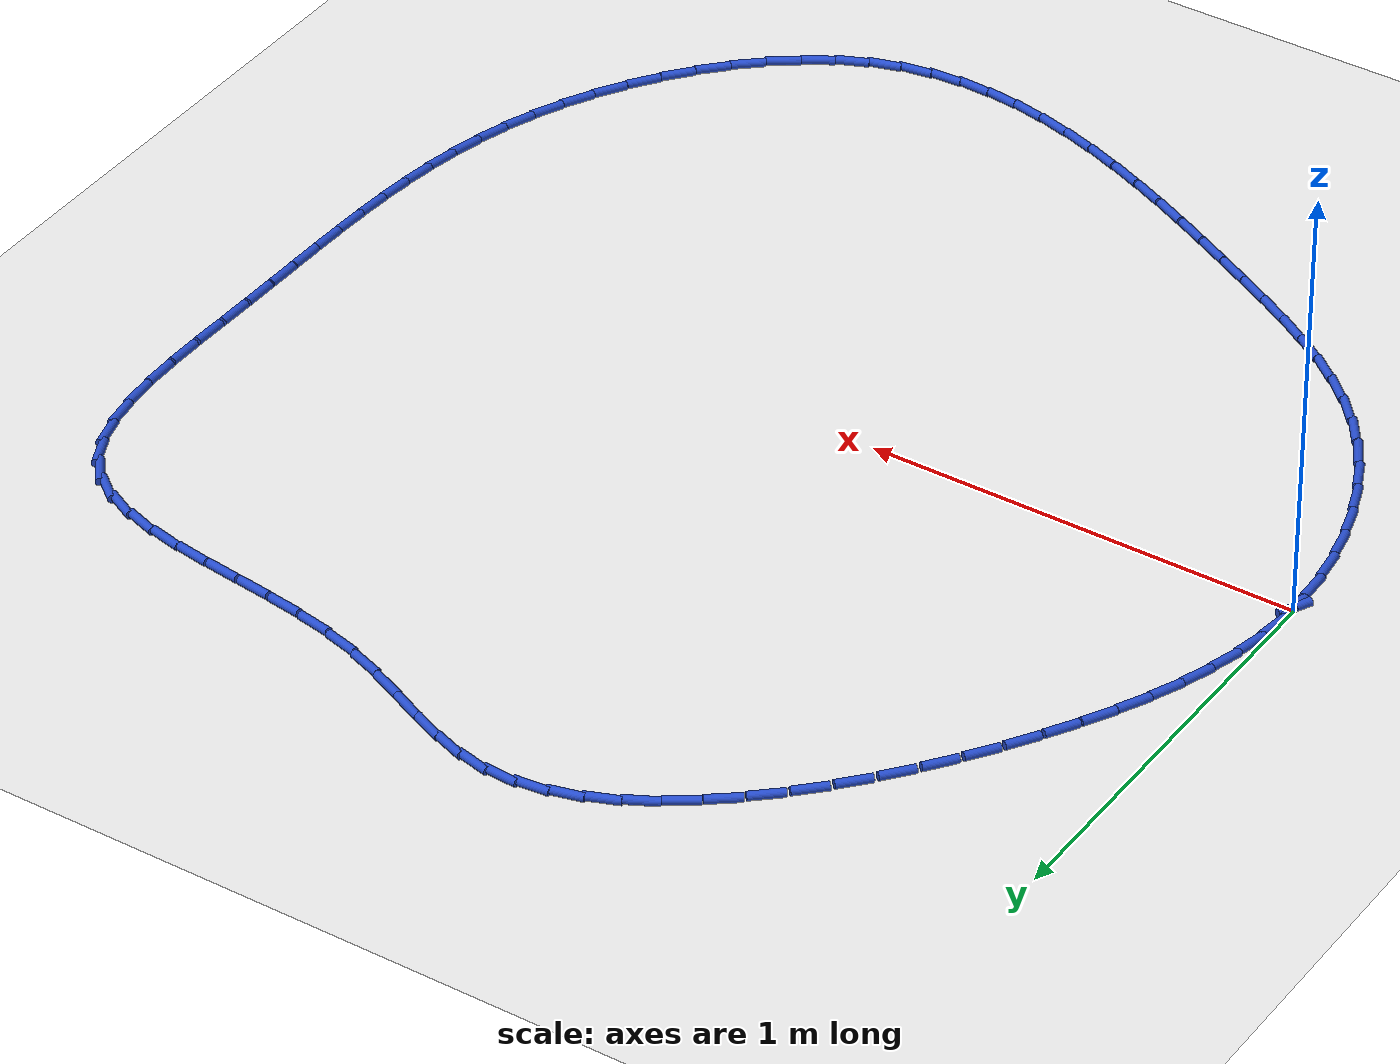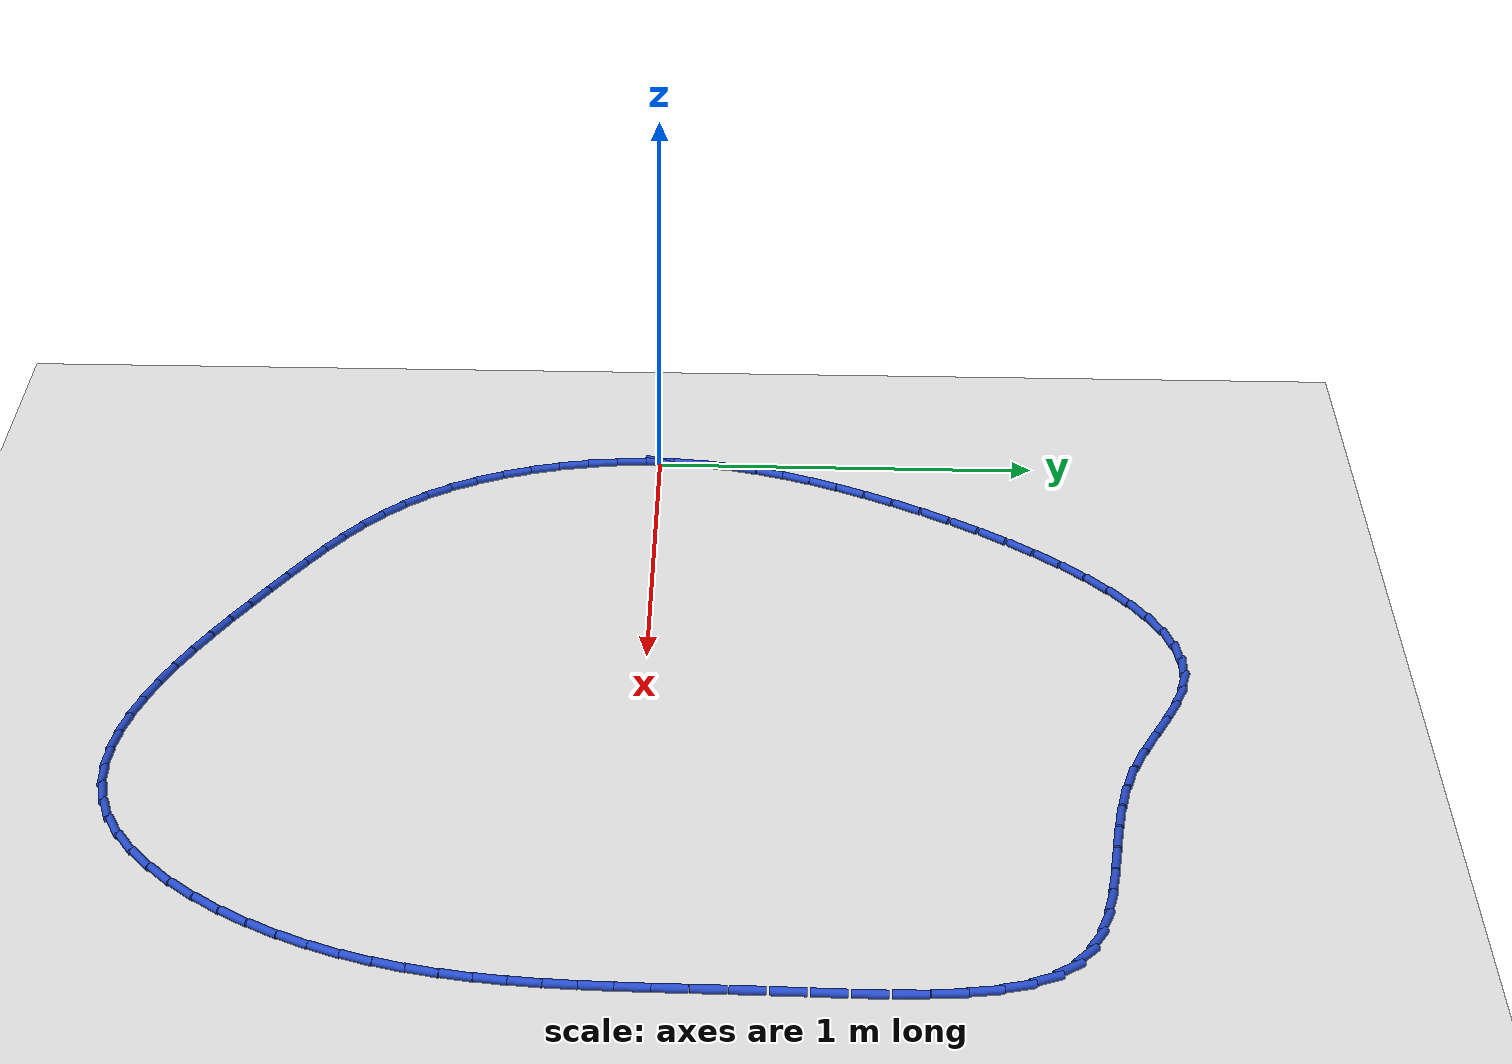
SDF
<sdf version="1.6">
 <world name="default">
  <light name="sun" type="directional">
   <pose>0 0 10 0 -0 0</pose>
   <diffuse>0.8 0.8 0.8 1</diffuse>
   <specular>0.2 0.2 0.2 1</specular>
   <attenuation>
    <range>1000</range>
    <constant>0.9</constant>
    <linear>0.01</linear>
    <quadratic>0.001</quadratic>
   </attenuation>
   <direction>-0.5 0.1 -0.9</direction>
  </light>
  <model name="ground_plane">
   <static>1</static>
   <link name="link">
    <collision name="collision">
     <geometry><plane><normal>0 0 1</normal><size>100 100</size></plane></geometry>
     <surface><friction><ode><mu>100</mu><mu2>50</mu2></ode></friction></surface>
    </collision>
    <visual name="visual">
     <cast_shadows>0</cast_shadows>
     <geometry><plane><normal>0 0 1</normal><size>100 100</size></plane></geometry>
     <material>
      <script><uri>file://media/materials/scripts/gazebo.material</uri><name>Gazebo/WhiteGlow</name></script>
     </material>
    </visual>
   </link>
  </model>
  <gravity>0 0 -9.8</gravity>
  <magnetic_field>6e-06 2.3e-05 -4.2e-05</magnetic_field>
  <atmosphere type="adiabatic"/>
  <physics name="default_physics" default="0" type="ode">
   <max_step_size>0.001</max_step_size>
   <real_time_factor>1</real_time_factor>
   <real_time_update_rate>1000</real_time_update_rate>
  </physics>
  <scene><ambient>0.4 0.4 0.4 1</ambient><background>0.7 0.7 0.7 1</background><shadows>1</shadows></scene>
  <spherical_coordinates>
   <surface_model>EARTH_WGS84</surface_model>
   <latitude_deg>0</latitude_deg>
   <longitude_deg>0</longitude_deg>
   <elevation>0</elevation>
   <heading_deg>0</heading_deg>
  </spherical_coordinates>
  <model name="line">
   <link name="link_0">
    <pose>-2.7755575615628914e-17 2.7755575615628914e-17 0.01 0 1.57 1.5141377785667471</pose>
    <collision name="collision">
     <geometry><cylinder><radius>0.01</radius><length>0.08</length></cylinder></geometry>
    </collision>
    <visual name="visual">
     <material>
      <script><name>Gazebo/Blue</name><uri>file://media/materials/scripts/gazebo.material</uri></script>
     </material>
     <geometry><cylinder><radius>0.01</radius><length>0.08</length></cylinder></geometry>
    </visual>
   </link>
   <link name="link_1">
    <pose>0.004302029935288694 0.0758477871059244 0.01 0 1.57 1.4289447991006399</pose>
    <collision name="collision">
     <geometry><cylinder><radius>0.01</radius><length>0.08</length></cylinder></geometry>
    </collision>
    <visual name="visual">
     <material>
      <script><name>Gazebo/Blue</name><uri>file://media/materials/scripts/gazebo.material</uri></script>
     </material>
     <geometry><cylinder><radius>0.01</radius><length>0.08</length></cylinder></geometry>
    </visual>
   </link>
   <link name="link_2">
    <pose>0.014940544803427864 0.1503416158384287 0.01 0 1.57 1.3486167609560773</pose>
    <collision name="collision">
     <geometry><cylinder><radius>0.01</radius><length>0.08</length></cylinder></geometry>
    </collision>
    <visual name="visual">
     <material>
      <script><name>Gazebo/Blue</name><uri>file://media/materials/scripts/gazebo.material</uri></script>
     </material>
     <geometry><cylinder><radius>0.01</radius><length>0.08</length></cylinder></geometry>
    </visual>
   </link>
   <link name="link_3">
    <pose>0.031537674449649736 0.22380979319827554 0.01 0 1.57 1.2749753436544171</pose>
    <collision name="collision">
     <geometry><cylinder><radius>0.01</radius><length>0.08</length></cylinder></geometry>
    </collision>
    <visual name="visual">
     <material>
      <script><name>Gazebo/Blue</name><uri>file://media/materials/scripts/gazebo.material</uri></script>
     </material>
     <geometry><cylinder><radius>0.01</radius><length>0.08</length></cylinder></geometry>
    </visual>
   </link>
   <link name="link_4">
    <pose>0.053715548719186546 0.2965806261862277 0.01 0 1.57 1.209242591728296</pose>
    <collision name="collision">
     <geometry><cylinder><radius>0.01</radius><length>0.08</length></cylinder></geometry>
    </collision>
    <visual name="visual">
     <material>
      <script><name>Gazebo/Blue</name><uri>file://media/materials/scripts/gazebo.material</uri></script>
     </material>
     <geometry><cylinder><radius>0.01</radius><length>0.08</length></cylinder></geometry>
    </visual>
   </link>
   <link name="link_5">
    <pose>0.0810962974572705 0.368982421803048 0.01 0 1.57 1.152049588860094</pose>
    <collision name="collision">
     <geometry><cylinder><radius>0.01</radius><length>0.08</length></cylinder></geometry>
    </collision>
    <visual name="visual">
     <material>
      <script><name>Gazebo/Blue</name><uri>file://media/materials/scripts/gazebo.material</uri></script>
     </material>
     <geometry><cylinder><radius>0.01</radius><length>0.08</length></cylinder></geometry>
    </visual>
   </link>
   <link name="link_6">
    <pose>0.11330205050913383 0.4413434870494991 0.01 0 1.57 1.1035371263111255</pose>
    <collision name="collision">
     <geometry><cylinder><radius>0.01</radius><length>0.08</length></cylinder></geometry>
    </collision>
    <visual name="visual">
     <material>
      <script><name>Gazebo/Blue</name><uri>file://media/materials/scripts/gazebo.material</uri></script>
     </material>
     <geometry><cylinder><radius>0.01</radius><length>0.08</length></cylinder></geometry>
    </visual>
   </link>
   <link name="link_7">
    <pose>0.14995493772000884 0.5139921289263438 0.01 0 1.57 1.0634930308182473</pose>
    <collision name="collision">
     <geometry><cylinder><radius>0.01</radius><length>0.08</length></cylinder></geometry>
    </collision>
    <visual name="visual">
     <material>
      <script><name>Gazebo/Blue</name><uri>file://media/materials/scripts/gazebo.material</uri></script>
     </material>
     <geometry><cylinder><radius>0.01</radius><length>0.08</length></cylinder></geometry>
    </visual>
   </link>
   <link name="link_8">
    <pose>0.1906770889351276 0.5872566544343447 0.01 0 1.57 1.030126871271785</pose>
    <collision name="collision">
     <geometry><cylinder><radius>0.01</radius><length>0.08</length></cylinder></geometry>
    </collision>
    <visual name="visual">
     <material>
      <script><name>Gazebo/Blue</name><uri>file://media/materials/scripts/gazebo.material</uri></script>
     </material>
     <geometry><cylinder><radius>0.01</radius><length>0.08</length></cylinder></geometry>
    </visual>
   </link>
   <link name="link_9">
    <pose>0.23510948796647455 0.6612687138691857 0.01 0 1.57 0.9972366766418178</pose>
    <collision name="collision">
     <geometry><cylinder><radius>0.01</radius><length>0.08</length></cylinder></geometry>
    </collision>
    <visual name="visual">
     <material>
      <script><name>Gazebo/Blue</name><uri>file://media/materials/scripts/gazebo.material</uri></script>
     </material>
     <geometry><cylinder><radius>0.01</radius><length>0.08</length></cylinder></geometry>
    </visual>
   </link>
   <link name="link_10">
    <pose>0.2829701751711078 0.7353562175784369 0.01 0 1.57 0.9625765692994553</pose>
    <collision name="collision">
     <geometry><cylinder><radius>0.01</radius><length>0.08</length></cylinder></geometry>
    </collision>
    <visual name="visual">
     <material>
      <script><name>Gazebo/Blue</name><uri>file://media/materials/scripts/gazebo.material</uri></script>
     </material>
     <geometry><cylinder><radius>0.01</radius><length>0.08</length></cylinder></geometry>
    </visual>
   </link>
   <link name="link_11">
    <pose>0.33399687409582896 0.8086417699763703 0.01 0 1.57 0.9252802987614811</pose>
    <collision name="collision">
     <geometry><cylinder><radius>0.01</radius><length>0.08</length></cylinder></geometry>
    </collision>
    <visual name="visual">
     <material>
      <script><name>Gazebo/Blue</name><uri>file://media/materials/scripts/gazebo.material</uri></script>
     </material>
     <geometry><cylinder><radius>0.01</radius><length>0.08</length></cylinder></geometry>
    </visual>
   </link>
   <link name="link_12">
    <pose>0.38792730829455213 0.8802479754030718 0.01 0 1.57 0.8844002564801519</pose>
    <collision name="collision">
     <geometry><cylinder><radius>0.01</radius><length>0.08</length></cylinder></geometry>
    </collision>
    <visual name="visual">
     <material>
      <script><name>Gazebo/Blue</name><uri>file://media/materials/scripts/gazebo.material</uri></script>
     </material>
     <geometry><cylinder><radius>0.01</radius><length>0.08</length></cylinder></geometry>
    </visual>
   </link>
   <link name="link_13">
    <pose>0.44449920132119164 0.9492974381986276 0.01 0 1.57 0.8388467807622036</pose>
    <collision name="collision">
     <geometry><cylinder><radius>0.01</radius><length>0.08</length></cylinder></geometry>
    </collision>
    <visual name="visual">
     <material>
      <script><name>Gazebo/Blue</name><uri>file://media/materials/scripts/gazebo.material</uri></script>
     </material>
     <geometry><cylinder><radius>0.01</radius><length>0.08</length></cylinder></geometry>
    </visual>
   </link>
   <link name="link_14">
    <pose>0.5034502767296614 1.0149127627031234 0.01 0 1.57 0.7873251512458319</pose>
    <collision name="collision">
     <geometry><cylinder><radius>0.01</radius><length>0.08</length></cylinder></geometry>
    </collision>
    <visual name="visual">
     <material>
      <script><name>Gazebo/Blue</name><uri>file://media/materials/scripts/gazebo.material</uri></script>
     </material>
     <geometry><cylinder><radius>0.01</radius><length>0.08</length></cylinder></geometry>
    </visual>
   </link>
   <link name="link_15">
    <pose>0.5645182580738752 1.0762165532566448 0.01 0 1.57 0.7282704178170308</pose>
    <collision name="collision">
     <geometry><cylinder><radius>0.01</radius><length>0.08</length></cylinder></geometry>
    </collision>
    <visual name="visual">
     <material>
      <script><name>Gazebo/Blue</name><uri>file://media/materials/scripts/gazebo.material</uri></script>
     </material>
     <geometry><cylinder><radius>0.01</radius><length>0.08</length></cylinder></geometry>
    </visual>
   </link>
   <link name="link_16">
    <pose>0.6274408689077476 1.1323314141992782 0.01 0 1.57 0.6597886494438495</pose>
    <collision name="collision">
     <geometry><cylinder><radius>0.01</radius><length>0.08</length></cylinder></geometry>
    </collision>
    <visual name="visual">
     <material>
      <script><name>Gazebo/Blue</name><uri>file://media/materials/scripts/gazebo.material</uri></script>
     </material>
     <geometry><cylinder><radius>0.01</radius><length>0.08</length></cylinder></geometry>
    </visual>
   </link>
   <link name="link_17">
    <pose>0.6919558327851928 1.1823799498711098 0.01 0 1.57 0.5796303562644355</pose>
    <collision name="collision">
     <geometry><cylinder><radius>0.01</radius><length>0.08</length></cylinder></geometry>
    </collision>
    <visual name="visual">
     <material>
      <script><name>Gazebo/Blue</name><uri>file://media/materials/scripts/gazebo.material</uri></script>
     </material>
     <geometry><cylinder><radius>0.01</radius><length>0.08</length></cylinder></geometry>
    </visual>
   </link>
   <link name="link_18">
    <pose>0.757800873260124 1.2254847646122242 0.01 0 1.57 0.48525484883733727</pose>
    <collision name="collision">
     <geometry><cylinder><radius>0.01</radius><length>0.08</length></cylinder></geometry>
    </collision>
    <visual name="visual">
     <material>
      <script><name>Gazebo/Blue</name><uri>file://media/materials/scripts/gazebo.material</uri></script>
     </material>
     <geometry><cylinder><radius>0.01</radius><length>0.08</length></cylinder></geometry>
    </visual>
   </link>
   <link name="link_19">
    <pose>0.8247137138864564 1.2607684627627087 0.01 0 1.57 0.3740974769447682</pose>
    <collision name="collision">
     <geometry><cylinder><radius>0.01</radius><length>0.08</length></cylinder></geometry>
    </collision>
    <visual name="visual">
     <material>
      <script><name>Gazebo/Blue</name><uri>file://media/materials/scripts/gazebo.material</uri></script>
     </material>
     <geometry><cylinder><radius>0.01</radius><length>0.08</length></cylinder></geometry>
    </visual>
   </link>
   <link name="link_20">
    <pose>0.8924320782181034 1.2873536486626485 0.01 0 1.57 0.24420467534012197</pose>
    <collision name="collision">
     <geometry><cylinder><radius>0.01</radius><length>0.08</length></cylinder></geometry>
    </collision>
    <visual name="visual">
     <material>
      <script><name>Gazebo/Blue</name><uri>file://media/materials/scripts/gazebo.material</uri></script>
     </material>
     <geometry><cylinder><radius>0.01</radius><length>0.08</length></cylinder></geometry>
    </visual>
   </link>
   <link name="link_21">
    <pose>0.9606936898089791 1.304362926652129 0.01 0 1.57 0.09535810596372785</pose>
    <collision name="collision">
     <geometry><cylinder><radius>0.01</radius><length>0.08</length></cylinder></geometry>
    </collision>
    <visual name="visual">
     <material>
      <script><name>Gazebo/Blue</name><uri>file://media/materials/scripts/gazebo.material</uri></script>
     </material>
     <geometry><cylinder><radius>0.01</radius><length>0.08</length></cylinder></geometry>
    </visual>
   </link>
   <link name="link_22">
    <pose>1.029236272212998 1.3109189010712372 0.01 0 1.57 -0.06952943739422877</pose>
    <collision name="collision">
     <geometry><cylinder><radius>0.01</radius><length>0.08</length></cylinder></geometry>
    </collision>
    <visual name="visual">
     <material>
      <script><name>Gazebo/Blue</name><uri>file://media/materials/scripts/gazebo.material</uri></script>
     </material>
     <geometry><cylinder><radius>0.01</radius><length>0.08</length></cylinder></geometry>
    </visual>
   </link>
   <link name="link_23">
    <pose>1.0977975492510208 1.306144177353987 0.01 0 1.57 -0.2330867104921413</pose>
    <collision name="collision">
     <geometry><cylinder><radius>0.01</radius><length>0.08</length></cylinder></geometry>
    </collision>
    <visual name="visual">
     <material>
      <script><name>Gazebo/Blue</name><uri>file://media/materials/scripts/gazebo.material</uri></script>
     </material>
     <geometry><cylinder><radius>0.01</radius><length>0.08</length></cylinder></geometry>
    </visual>
   </link>
   <link name="link_24">
    <pose>1.166291490249181 1.289883601982131 0.01 0 1.57 -0.34893554499861323</pose>
    <collision name="collision">
     <geometry><cylinder><radius>0.01</radius><length>0.08</length></cylinder></geometry>
    </collision>
    <visual name="visual">
     <material>
      <script><name>Gazebo/Blue</name><uri>file://media/materials/scripts/gazebo.material</uri></script>
     </material>
     <geometry><cylinder><radius>0.01</radius><length>0.08</length></cylinder></geometry>
    </visual>
   </link>
   <link name="link_25">
    <pose>1.2353129029827603 1.2647720470558996 0.01 0 1.57 -0.4111475063744677</pose>
    <collision name="collision">
     <geometry><cylinder><radius>0.01</radius><length>0.08</length></cylinder></geometry>
    </collision>
    <visual name="visual">
     <material>
      <script><name>Gazebo/Blue</name><uri>file://media/materials/scripts/gazebo.material</uri></script>
     </material>
     <geometry><cylinder><radius>0.01</radius><length>0.08</length></cylinder></geometry>
    </visual>
   </link>
   <link name="link_26">
    <pose>1.3056209742776643 1.234117997869606 0.01 0 1.57 -0.42662651040753297</pose>
    <collision name="collision">
     <geometry><cylinder><radius>0.01</radius><length>0.08</length></cylinder></geometry>
    </collision>
    <visual name="visual">
     <material>
      <script><name>Gazebo/Blue</name><uri>file://media/materials/scripts/gazebo.material</uri></script>
     </material>
     <geometry><cylinder><radius>0.01</radius><length>0.08</length></cylinder></geometry>
    </visual>
   </link>
   <link name="link_27">
    <pose>1.3779748909597989 1.2012299397175614 0.01 0 1.57 -0.4004162972871803</pose>
    <collision name="collision">
     <geometry><cylinder><radius>0.01</radius><length>0.08</length></cylinder></geometry>
    </collision>
    <visual name="visual">
     <material>
      <script><name>Gazebo/Blue</name><uri>file://media/materials/scripts/gazebo.material</uri></script>
     </material>
     <geometry><cylinder><radius>0.01</radius><length>0.08</length></cylinder></geometry>
    </visual>
   </link>
   <link name="link_28">
    <pose>1.4531338398550693 1.1694163578940786 0.01 0 1.57 -0.335309506716102</pose>
    <collision name="collision">
     <geometry><cylinder><radius>0.01</radius><length>0.08</length></cylinder></geometry>
    </collision>
    <visual name="visual">
     <material>
      <script><name>Gazebo/Blue</name><uri>file://media/materials/scripts/gazebo.material</uri></script>
     </material>
     <geometry><cylinder><radius>0.01</radius><length>0.08</length></cylinder></geometry>
    </visual>
   </link>
   <link name="link_29">
    <pose>1.5318562730646612 1.1419840958464096 0.01 0 1.57 -0.2487221349410982</pose>
    <collision name="collision">
     <geometry><cylinder><radius>0.01</radius><length>0.08</length></cylinder></geometry>
    </collision>
    <visual name="visual">
     <material>
      <script><name>Gazebo/Blue</name><uri>file://media/materials/scripts/gazebo.material</uri></script>
     </material>
     <geometry><cylinder><radius>0.01</radius><length>0.08</length></cylinder></geometry>
    </visual>
   </link>
   <link name="link_30">
    <pose>1.6143591351634892 1.1210299213081012 0.01 0 1.57 -0.18298538899159023</pose>
    <collision name="collision">
     <geometry><cylinder><radius>0.01</radius><length>0.08</length></cylinder></geometry>
    </collision>
    <visual name="visual">
     <material>
      <script><name>Gazebo/Blue</name><uri>file://media/materials/scripts/gazebo.material</uri></script>
     </material>
     <geometry><cylinder><radius>0.01</radius><length>0.08</length></cylinder></geometry>
    </visual>
   </link>
   <link name="link_31">
    <pose>1.69936000114621 1.1053000470768788 0.01 0 1.57 -0.14251952359969014</pose>
    <collision name="collision">
     <geometry><cylinder><radius>0.01</radius><length>0.08</length></cylinder></geometry>
    </collision>
    <visual name="visual">
     <material>
      <script><name>Gazebo/Blue</name><uri>file://media/materials/scripts/gazebo.material</uri></script>
     </material>
     <geometry><cylinder><radius>0.01</radius><length>0.08</length></cylinder></geometry>
    </visual>
   </link>
   <link name="link_32">
    <pose>1.7853190842164959 1.0929655743632847 0.01 0 1.57 -0.12545943297087994</pose>
    <collision name="collision">
     <geometry><cylinder><radius>0.01</radius><length>0.08</length></cylinder></geometry>
    </collision>
    <visual name="visual">
     <material>
      <script><name>Gazebo/Blue</name><uri>file://media/materials/scripts/gazebo.material</uri></script>
     </material>
     <geometry><cylinder><radius>0.01</radius><length>0.08</length></cylinder></geometry>
    </visual>
   </link>
   <link name="link_33">
    <pose>1.8706965975780208 1.0821976043778627 0.01 0 1.57 -0.13171997969350088</pose>
    <collision name="collision">
     <geometry><cylinder><radius>0.01</radius><length>0.08</length></cylinder></geometry>
    </collision>
    <visual name="visual">
     <material>
      <script><name>Gazebo/Blue</name><uri>file://media/materials/scripts/gazebo.material</uri></script>
     </material>
     <geometry><cylinder><radius>0.01</radius><length>0.08</length></cylinder></geometry>
    </visual>
   </link>
   <link name="link_34">
    <pose>1.9539527544344568 1.0711672383311548 0.01 0 1.57 -0.1633857635529927</pose>
    <collision name="collision">
     <geometry><cylinder><radius>0.01</radius><length>0.08</length></cylinder></geometry>
    </collision>
    <visual name="visual">
     <material>
      <script><name>Gazebo/Blue</name><uri>file://media/materials/scripts/gazebo.material</uri></script>
     </material>
     <geometry><cylinder><radius>0.01</radius><length>0.08</length></cylinder></geometry>
    </visual>
   </link>
   <link name="link_35">
    <pose>2.0335477679894773 1.0580455774337036 0.01 0 1.57 -0.22519006617982093</pose>
    <collision name="collision">
     <geometry><cylinder><radius>0.01</radius><length>0.08</length></cylinder></geometry>
    </collision>
    <visual name="visual">
     <material>
      <script><name>Gazebo/Blue</name><uri>file://media/materials/scripts/gazebo.material</uri></script>
     </material>
     <geometry><cylinder><radius>0.01</radius><length>0.08</length></cylinder></geometry>
    </visual>
   </link>
   <link name="link_36">
    <pose>2.107941851446754 1.041003722896052 0.01 0 1.57 -0.3249375690902876</pose>
    <collision name="collision">
     <geometry><cylinder><radius>0.01</radius><length>0.08</length></cylinder></geometry>
    </collision>
    <visual name="visual">
     <material>
      <script><name>Gazebo/Blue</name><uri>file://media/materials/scripts/gazebo.material</uri></script>
     </material>
     <geometry><cylinder><radius>0.01</radius><length>0.08</length></cylinder></geometry>
    </visual>
   </link>
   <link name="link_37">
    <pose>2.175595218009962 1.0182127759287432 0.01 0 1.57 -0.4728014731314932</pose>
    <collision name="collision">
     <geometry><cylinder><radius>0.01</radius><length>0.08</length></cylinder></geometry>
    </collision>
    <visual name="visual">
     <material>
      <script><name>Gazebo/Blue</name><uri>file://media/materials/scripts/gazebo.material</uri></script>
     </material>
     <geometry><cylinder><radius>0.01</radius><length>0.08</length></cylinder></geometry>
    </visual>
   </link>
   <link name="link_38">
    <pose>2.234968080882773 0.9878438377423195 0.01 0 1.57 -0.6763848508837003</pose>
    <collision name="collision">
     <geometry><cylinder><radius>0.01</radius><length>0.08</length></cylinder></geometry>
    </collision>
    <visual name="visual">
     <material>
      <script><name>Gazebo/Blue</name><uri>file://media/materials/scripts/gazebo.material</uri></script>
     </material>
     <geometry><cylinder><radius>0.01</radius><length>0.08</length></cylinder></geometry>
    </visual>
   </link>
   <link name="link_39">
    <pose>2.2845206532688596 0.9480680095473231 0.01 0 1.57 -0.9231912576586706</pose>
    <collision name="collision">
     <geometry><cylinder><radius>0.01</radius><length>0.08</length></cylinder></geometry>
    </collision>
    <visual name="visual">
     <material>
      <script><name>Gazebo/Blue</name><uri>file://media/materials/scripts/gazebo.material</uri></script>
     </material>
     <geometry><cylinder><radius>0.01</radius><length>0.08</length></cylinder></geometry>
    </visual>
   </link>
   <link name="link_40">
    <pose>2.3229250857089796 0.8972975257422837 0.01 0 1.57 -1.1438602207455248</pose>
    <collision name="collision">
     <geometry><cylinder><radius>0.01</radius><length>0.08</length></cylinder></geometry>
    </collision>
    <visual name="visual">
     <material>
      <script><name>Gazebo/Blue</name><uri>file://media/materials/scripts/gazebo.material</uri></script>
     </material>
     <geometry><cylinder><radius>0.01</radius><length>0.08</length></cylinder></geometry>
    </visual>
   </link>
   <link name="link_41">
    <pose>2.3507591382926134 0.8361127413214848 0.01 0 1.57 -1.3073037686518383</pose>
    <collision name="collision">
     <geometry><cylinder><radius>0.01</radius><length>0.08</length></cylinder></geometry>
    </collision>
    <visual name="visual">
     <material>
      <script><name>Gazebo/Blue</name><uri>file://media/materials/scripts/gazebo.material</uri></script>
     </material>
     <geometry><cylinder><radius>0.01</radius><length>0.08</length></cylinder></geometry>
    </visual>
   </link>
   <link name="link_42">
    <pose>2.3696082154336584 0.7662404656588199 0.01 0 1.57 -1.422730472767167</pose>
    <collision name="collision">
     <geometry><cylinder><radius>0.01</radius><length>0.08</length></cylinder></geometry>
    </collision>
    <visual name="visual">
     <material>
      <script><name>Gazebo/Blue</name><uri>file://media/materials/scripts/gazebo.material</uri></script>
     </material>
     <geometry><cylinder><radius>0.01</radius><length>0.08</length></cylinder></geometry>
    </visual>
   </link>
   <link name="link_43">
    <pose>2.381066871984023 0.6894179191030445 0.01 0 1.57 -1.5018771944328115</pose>
    <collision name="collision">
     <geometry><cylinder><radius>0.01</radius><length>0.08</length></cylinder></geometry>
    </collision>
    <visual name="visual">
     <material>
      <script><name>Gazebo/Blue</name><uri>file://media/materials/scripts/gazebo.material</uri></script>
     </material>
     <geometry><cylinder><radius>0.01</radius><length>0.08</length></cylinder></geometry>
    </visual>
   </link>
   <link name="link_44">
    <pose>2.386729662795614 0.6073823220029156 0.01 0 1.57 -1.5537069424338572</pose>
    <collision name="collision">
     <geometry><cylinder><radius>0.01</radius><length>0.08</length></cylinder></geometry>
    </collision>
    <visual name="visual">
     <material>
      <script><name>Gazebo/Blue</name><uri>file://media/materials/scripts/gazebo.material</uri></script>
     </material>
     <geometry><cylinder><radius>0.01</radius><length>0.08</length></cylinder></geometry>
    </visual>
   </link>
   <link name="link_45">
    <pose>2.388191142720339 0.5218708947071896 0.01 0 1.57 1.5576707124464784</pose>
    <collision name="collision">
     <geometry><cylinder><radius>0.01</radius><length>0.08</length></cylinder></geometry>
    </collision>
    <visual name="visual">
     <material>
      <script><name>Gazebo/Blue</name><uri>file://media/materials/scripts/gazebo.material</uri></script>
     </material>
     <geometry><cylinder><radius>0.01</radius><length>0.08</length></cylinder></geometry>
    </visual>
   </link>
   <link name="link_46">
    <pose>2.387045866610107 0.4346208575646231 0.01 0 1.57 1.5460742354610313</pose>
    <collision name="collision">
     <geometry><cylinder><radius>0.01</radius><length>0.08</length></cylinder></geometry>
    </collision>
    <visual name="visual">
     <material>
      <script><name>Gazebo/Blue</name><uri>file://media/materials/scripts/gazebo.material</uri></script>
     </material>
     <geometry><cylinder><radius>0.01</radius><length>0.08</length></cylinder></geometry>
    </visual>
   </link>
   <link name="link_47">
    <pose>2.3848883893168247 0.3473694309239723 0.01 0 1.57 1.550761453642109</pose>
    <collision name="collision">
     <geometry><cylinder><radius>0.01</radius><length>0.08</length></cylinder></geometry>
    </collision>
    <visual name="visual">
     <material>
      <script><name>Gazebo/Blue</name><uri>file://media/materials/scripts/gazebo.material</uri></script>
     </material>
     <geometry><cylinder><radius>0.01</radius><length>0.08</length></cylinder></geometry>
    </visual>
   </link>
   <link name="link_48">
    <pose>2.3831723103637006 0.2617262963387328 0.01 0 1.57 1.557667392899366</pose>
    <collision name="collision">
     <geometry><cylinder><radius>0.01</radius><length>0.08</length></cylinder></geometry>
    </collision>
    <visual name="visual">
     <material>
      <script><name>Gazebo/Blue</name><uri>file://media/materials/scripts/gazebo.material</uri></script>
     </material>
     <geometry><cylinder><radius>0.01</radius><length>0.08</length></cylinder></geometry>
    </visual>
   </link>
   <link name="link_49">
    <pose>2.38207493131565 0.17814631911318612 0.01 0 1.57 1.5587969522479344</pose>
    <collision name="collision">
     <geometry><cylinder><radius>0.01</radius><length>0.08</length></cylinder></geometry>
    </collision>
    <visual name="visual">
     <material>
      <script><name>Gazebo/Blue</name><uri>file://media/materials/scripts/gazebo.material</uri></script>
     </material>
     <geometry><cylinder><radius>0.01</radius><length>0.08</length></cylinder></geometry>
    </visual>
   </link>
   <link name="link_50">
    <pose>2.381094822371529 0.0964702367883575 0.01 0 1.57 1.5536525992228596</pose>
    <collision name="collision">
     <geometry><cylinder><radius>0.01</radius><length>0.08</length></cylinder></geometry>
    </collision>
    <visual name="visual">
     <material>
      <script><name>Gazebo/Blue</name><uri>file://media/materials/scripts/gazebo.material</uri></script>
     </material>
     <geometry><cylinder><radius>0.01</radius><length>0.08</length></cylinder></geometry>
    </visual>
   </link>
   <link name="link_51">
    <pose>2.3797242675853107 0.016533099093731872 0.01 0 1.57 1.5418530897978777</pose>
    <collision name="collision">
     <geometry><cylinder><radius>0.01</radius><length>0.08</length></cylinder></geometry>
    </collision>
    <visual name="visual">
     <material>
      <script><name>Gazebo/Blue</name><uri>file://media/materials/scripts/gazebo.material</uri></script>
     </material>
     <geometry><cylinder><radius>0.01</radius><length>0.08</length></cylinder></geometry>
    </visual>
   </link>
   <link name="link_52">
    <pose>2.377455551010968 -0.061830044241205584 0.01 0 1.57 1.52308210057465</pose>
    <collision name="collision">
     <geometry><cylinder><radius>0.01</radius><length>0.08</length></cylinder></geometry>
    </collision>
    <visual name="visual">
     <material>
      <script><name>Gazebo/Blue</name><uri>file://media/materials/scripts/gazebo.material</uri></script>
     </material>
     <geometry><cylinder><radius>0.01</radius><length>0.08</length></cylinder></geometry>
    </visual>
   </link>
   <link name="link_53">
    <pose>2.3737809567024737 -0.13878414348696985 0.01 0 1.57 1.497119500468112</pose>
    <collision name="collision">
     <geometry><cylinder><radius>0.01</radius><length>0.08</length></cylinder></geometry>
    </collision>
    <visual name="visual">
     <material>
      <script><name>Gazebo/Blue</name><uri>file://media/materials/scripts/gazebo.material</uri></script>
     </material>
     <geometry><cylinder><radius>0.01</radius><length>0.08</length></cylinder></geometry>
    </visual>
   </link>
   <link name="link_54">
    <pose>2.3681927687137994 -0.21449414891407576 0.01 0 1.57 1.4638840212846977</pose>
    <collision name="collision">
     <geometry><cylinder><radius>0.01</radius><length>0.08</length></cylinder></geometry>
    </collision>
    <visual name="visual">
     <material>
      <script><name>Gazebo/Blue</name><uri>file://media/materials/scripts/gazebo.material</uri></script>
     </material>
     <geometry><cylinder><radius>0.01</radius><length>0.08</length></cylinder></geometry>
    </visual>
   </link>
   <link name="link_55">
    <pose>2.3601832710989203 -0.2891250107930381 0.01 0 1.57 1.423485214573818</pose>
    <collision name="collision">
     <geometry><cylinder><radius>0.01</radius><length>0.08</length></cylinder></geometry>
    </collision>
    <visual name="visual">
     <material>
      <script><name>Gazebo/Blue</name><uri>file://media/materials/scripts/gazebo.material</uri></script>
     </material>
     <geometry><cylinder><radius>0.01</radius><length>0.08</length></cylinder></geometry>
    </visual>
   </link>
   <link name="link_56">
    <pose>2.349244747911809 -0.3628416793943719 0.01 0 1.57 1.3762780438417033</pose>
    <collision name="collision">
     <geometry><cylinder><radius>0.01</radius><length>0.08</length></cylinder></geometry>
    </collision>
    <visual name="visual">
     <material>
      <script><name>Gazebo/Blue</name><uri>file://media/materials/scripts/gazebo.material</uri></script>
     </material>
     <geometry><cylinder><radius>0.01</radius><length>0.08</length></cylinder></geometry>
    </visual>
   </link>
   <link name="link_57">
    <pose>2.334869483206438 -0.43580910498859216 0.01 0 1.57 1.322907977990476</pose>
    <collision name="collision">
     <geometry><cylinder><radius>0.01</radius><length>0.08</length></cylinder></geometry>
    </collision>
    <visual name="visual">
     <material>
      <script><name>Gazebo/Blue</name><uri>file://media/materials/scripts/gazebo.material</uri></script>
     </material>
     <geometry><cylinder><radius>0.01</radius><length>0.08</length></cylinder></geometry>
    </visual>
   </link>
   <link name="link_58">
    <pose>2.3165497610367805 -0.5081922378462127 0.01 0 1.57 1.264330150326572</pose>
    <collision name="collision">
     <geometry><cylinder><radius>0.01</radius><length>0.08</length></cylinder></geometry>
    </collision>
    <visual name="visual">
     <material>
      <script><name>Gazebo/Blue</name><uri>file://media/materials/scripts/gazebo.material</uri></script>
     </material>
     <geometry><cylinder><radius>0.01</radius><length>0.08</length></cylinder></geometry>
    </visual>
   </link>
   <link name="link_59">
    <pose>2.2937778654568097 -0.5801560282377504 0.01 0 1.57 1.2017864245462049</pose>
    <collision name="collision">
     <geometry><cylinder><radius>0.01</radius><length>0.08</length></cylinder></geometry>
    </collision>
    <visual name="visual">
     <material>
      <script><name>Gazebo/Blue</name><uri>file://media/materials/scripts/gazebo.material</uri></script>
     </material>
     <geometry><cylinder><radius>0.01</radius><length>0.08</length></cylinder></geometry>
    </visual>
   </link>
   <link name="link_60">
    <pose>2.266046080520497 -0.6518654264337187 0.01 0 1.57 1.1370192853392822</pose>
    <collision name="collision">
     <geometry><cylinder><radius>0.01</radius><length>0.08</length></cylinder></geometry>
    </collision>
    <visual name="visual">
     <material>
      <script><name>Gazebo/Blue</name><uri>file://media/materials/scripts/gazebo.material</uri></script>
     </material>
     <geometry><cylinder><radius>0.01</radius><length>0.08</length></cylinder></geometry>
    </visual>
   </link>
   <link name="link_61">
    <pose>2.2329104145956777 -0.7234017676511659 0.01 0 1.57 1.0729678150914446</pose>
    <collision name="collision">
     <geometry><cylinder><radius>0.01</radius><length>0.08</length></cylinder></geometry>
    </collision>
    <visual name="visual">
     <material>
      <script><name>Gazebo/Blue</name><uri>file://media/materials/scripts/gazebo.material</uri></script>
     </material>
     <geometry><cylinder><radius>0.01</radius><length>0.08</length></cylinder></geometry>
    </visual>
   </link>
   <link name="link_62">
    <pose>2.1944649888654006 -0.7941403091740697 0.01 0 1.57 1.0091792591132258</pose>
    <collision name="collision">
     <geometry><cylinder><radius>0.01</radius><length>0.08</length></cylinder></geometry>
    </collision>
    <visual name="visual">
     <material>
      <script><name>Gazebo/Blue</name><uri>file://media/materials/scripts/gazebo.material</uri></script>
     </material>
     <geometry><cylinder><radius>0.01</radius><length>0.08</length></cylinder></geometry>
    </visual>
   </link>
   <link name="link_63">
    <pose>2.1510741435737604 -0.8631017437588563 0.01 0 1.57 0.9437536745255733</pose>
    <collision name="collision">
     <geometry><cylinder><radius>0.01</radius><length>0.08</length></cylinder></geometry>
    </collision>
    <visual name="visual">
     <material>
      <script><name>Gazebo/Blue</name><uri>file://media/materials/scripts/gazebo.material</uri></script>
     </material>
     <geometry><cylinder><radius>0.01</radius><length>0.08</length></cylinder></geometry>
    </visual>
   </link>
   <link name="link_64">
    <pose>2.1031042555882555 -0.9293040918322812 0.01 0 1.57 0.8748169985751771</pose>
    <collision name="collision">
     <geometry><cylinder><radius>0.01</radius><length>0.08</length></cylinder></geometry>
    </collision>
    <visual name="visual">
     <material>
      <script><name>Gazebo/Blue</name><uri>file://media/materials/scripts/gazebo.material</uri></script>
     </material>
     <geometry><cylinder><radius>0.01</radius><length>0.08</length></cylinder></geometry>
    </visual>
   </link>
   <link name="link_65">
    <pose>2.0509217017763826 -0.9917653738211014 0.01 0 1.57 0.8004224125248718</pose>
    <collision name="collision">
     <geometry><cylinder><radius>0.01</radius><length>0.08</length></cylinder></geometry>
    </collision>
    <visual name="visual">
     <material>
      <script><name>Gazebo/Blue</name><uri>file://media/materials/scripts/gazebo.material</uri></script>
     </material>
     <geometry><cylinder><radius>0.01</radius><length>0.08</length></cylinder></geometry>
    </visual>
   </link>
   <link name="link_66">
    <pose>1.9948928590056363 -1.0495036101520718 0.01 0 1.57 0.7184782272327523</pose>
    <collision name="collision">
     <geometry><cylinder><radius>0.01</radius><length>0.08</length></cylinder></geometry>
    </collision>
    <visual name="visual">
     <material>
      <script><name>Gazebo/Blue</name><uri>file://media/materials/scripts/gazebo.material</uri></script>
     </material>
     <geometry><cylinder><radius>0.01</radius><length>0.08</length></cylinder></geometry>
    </visual>
   </link>
   <link name="link_67">
    <pose>1.9353841041435151 -1.101536821251949 0.01 0 1.57 0.6267327473023984</pose>
    <collision name="collision">
     <geometry><cylinder><radius>0.01</radius><length>0.08</length></cylinder></geometry>
    </collision>
    <visual name="visual">
     <material>
      <script><name>Gazebo/Blue</name><uri>file://media/materials/scripts/gazebo.material</uri></script>
     </material>
     <geometry><cylinder><radius>0.01</radius><length>0.08</length></cylinder></geometry>
    </visual>
   </link>
   <link name="link_68">
    <pose>1.8727618140575149 -1.1468830275474893 0.01 0 1.57 0.522865936240687</pose>
    <collision name="collision">
     <geometry><cylinder><radius>0.01</radius><length>0.08</length></cylinder></geometry>
    </collision>
    <visual name="visual">
     <material>
      <script><name>Gazebo/Blue</name><uri>file://media/materials/scripts/gazebo.material</uri></script>
     </material>
     <geometry><cylinder><radius>0.01</radius><length>0.08</length></cylinder></geometry>
    </visual>
   </link>
   <link name="link_69">
    <pose>1.8073923656151325 -1.1845602494654481 0.01 0 1.57 0.40477540838251597</pose>
    <collision name="collision">
     <geometry><cylinder><radius>0.01</radius><length>0.08</length></cylinder></geometry>
    </collision>
    <visual name="visual">
     <material>
      <script><name>Gazebo/Blue</name><uri>file://media/materials/scripts/gazebo.material</uri></script>
     </material>
     <geometry><cylinder><radius>0.01</radius><length>0.08</length></cylinder></geometry>
    </visual>
   </link>
   <link name="link_70">
    <pose>1.7396421192740894 -1.2135867369621138 0.01 0 1.57 0.27592886234125713</pose>
    <collision name="collision">
     <geometry><cylinder><radius>0.01</radius><length>0.08</length></cylinder></geometry>
    </collision>
    <visual name="visual">
     <material>
      <script><name>Gazebo/Blue</name><uri>file://media/materials/scripts/gazebo.material</uri></script>
     </material>
     <geometry><cylinder><radius>0.01</radius><length>0.08</length></cylinder></geometry>
    </visual>
   </link>
   <link name="link_71">
    <pose>1.6698511673113405 -1.2333481626539957 0.01 0 1.57 0.15243349683675142</pose>
    <collision name="collision">
     <geometry><cylinder><radius>0.01</radius><length>0.08</length></cylinder></geometry>
    </collision>
    <visual name="visual">
     <material>
      <script><name>Gazebo/Blue</name><uri>file://media/materials/scripts/gazebo.material</uri></script>
     </material>
     <geometry><cylinder><radius>0.01</radius><length>0.08</length></cylinder></geometry>
    </visual>
   </link>
   <link name="link_72">
    <pose>1.5982800233098442 -1.2443432954814022 0.01 0 1.57 0.040161117164986236</pose>
    <collision name="collision">
     <geometry><cylinder><radius>0.01</radius><length>0.08</length></cylinder></geometry>
    </collision>
    <visual name="visual">
     <material>
      <script><name>Gazebo/Blue</name><uri>file://media/materials/scripts/gazebo.material</uri></script>
     </material>
     <geometry><cylinder><radius>0.01</radius><length>0.08</length></cylinder></geometry>
    </visual>
   </link>
   <link name="link_73">
    <pose>1.525174188546227 -1.247280887008777 0.01 0 1.57 -0.059224921103516834</pose>
    <collision name="collision">
     <geometry><cylinder><radius>0.01</radius><length>0.08</length></cylinder></geometry>
    </collision>
    <visual name="visual">
     <material>
      <script><name>Gazebo/Blue</name><uri>file://media/materials/scripts/gazebo.material</uri></script>
     </material>
     <geometry><cylinder><radius>0.01</radius><length>0.08</length></cylinder></geometry>
    </visual>
   </link>
   <link name="link_74">
    <pose>1.4507791642971162 -1.2428696888005626 0.01 0 1.57 -0.1454582768968392</pose>
    <collision name="collision">
     <geometry><cylinder><radius>0.01</radius><length>0.08</length></cylinder></geometry>
    </collision>
    <visual name="visual">
     <material>
      <script><name>Gazebo/Blue</name><uri>file://media/materials/scripts/gazebo.material</uri></script>
     </material>
     <geometry><cylinder><radius>0.01</radius><length>0.08</length></cylinder></geometry>
    </visual>
   </link>
   <link name="link_75">
    <pose>1.375340451839137 -1.231818452421202 0.01 0 1.57 -0.21918124906350012</pose>
    <collision name="collision">
     <geometry><cylinder><radius>0.01</radius><length>0.08</length></cylinder></geometry>
    </collision>
    <visual name="visual">
     <material>
      <script><name>Gazebo/Blue</name><uri>file://media/materials/scripts/gazebo.material</uri></script>
     </material>
     <geometry><cylinder><radius>0.01</radius><length>0.08</length></cylinder></geometry>
    </visual>
   </link>
   <link name="link_76">
    <pose>1.2991035524489165 -1.2148359294351379 0.01 0 1.57 -0.2814894014290494</pose>
    <collision name="collision">
     <geometry><cylinder><radius>0.01</radius><length>0.08</length></cylinder></geometry>
    </collision>
    <visual name="visual">
     <material>
      <script><name>Gazebo/Blue</name><uri>file://media/materials/scripts/gazebo.material</uri></script>
     </material>
     <geometry><cylinder><radius>0.01</radius><length>0.08</length></cylinder></geometry>
    </visual>
   </link>
   <link name="link_77">
    <pose>1.2223139674030825 -1.1926308714068137 0.01 0 1.57 -0.33360909378908116</pose>
    <collision name="collision">
     <geometry><cylinder><radius>0.01</radius><length>0.08</length></cylinder></geometry>
    </collision>
    <visual name="visual">
     <material>
      <script><name>Gazebo/Blue</name><uri>file://media/materials/scripts/gazebo.material</uri></script>
     </material>
     <geometry><cylinder><radius>0.01</radius><length>0.08</length></cylinder></geometry>
    </visual>
   </link>
   <link name="link_78">
    <pose>1.1452171979782602 -1.1659120299006718 0.01 0 1.57 -0.376707411589098</pose>
    <collision name="collision">
     <geometry><cylinder><radius>0.01</radius><length>0.08</length></cylinder></geometry>
    </collision>
    <visual name="visual">
     <material>
      <script><name>Gazebo/Blue</name><uri>file://media/materials/scripts/gazebo.material</uri></script>
     </material>
     <geometry><cylinder><radius>0.01</radius><length>0.08</length></cylinder></geometry>
    </visual>
   </link>
   <link name="link_79">
    <pose>1.0680587454510762 -1.1353881564811557 0.01 0 1.57 -0.4117969311666708</pose>
    <collision name="collision">
     <geometry><cylinder><radius>0.01</radius><length>0.08</length></cylinder></geometry>
    </collision>
    <visual name="visual">
     <material>
      <script><name>Gazebo/Blue</name><uri>file://media/materials/scripts/gazebo.material</uri></script>
     </material>
     <geometry><cylinder><radius>0.01</radius><length>0.08</length></cylinder></geometry>
    </visual>
   </link>
   <link name="link_80">
    <pose>0.9910841110981583 -1.1017680027127084 0.01 0 1.57 -0.4396966624908287</pose>
    <collision name="collision">
     <geometry><cylinder><radius>0.01</radius><length>0.08</length></cylinder></geometry>
    </collision>
    <visual name="visual">
     <material>
      <script><name>Gazebo/Blue</name><uri>file://media/materials/scripts/gazebo.material</uri></script>
     </material>
     <geometry><cylinder><radius>0.01</radius><length>0.08</length></cylinder></geometry>
    </visual>
   </link>
   <link name="link_81">
    <pose>0.9145387961961318 -1.065760320159772 0.01 0 1.57 -0.4610208857402128</pose>
    <collision name="collision">
     <geometry><cylinder><radius>0.01</radius><length>0.08</length></cylinder></geometry>
    </collision>
    <visual name="visual">
     <material>
      <script><name>Gazebo/Blue</name><uri>file://media/materials/scripts/gazebo.material</uri></script>
     </material>
     <geometry><cylinder><radius>0.01</radius><length>0.08</length></cylinder></geometry>
    </visual>
   </link>
   <link name="link_82">
    <pose>0.8386683020216239 -1.0280738603867907 0.01 0 1.57 -0.4761779163277538</pose>
    <collision name="collision">
     <geometry><cylinder><radius>0.01</radius><length>0.08</length></cylinder></geometry>
    </collision>
    <visual name="visual">
     <material>
      <script><name>Gazebo/Blue</name><uri>file://media/materials/scripts/gazebo.material</uri></script>
     </material>
     <geometry><cylinder><radius>0.01</radius><length>0.08</length></cylinder></geometry>
    </visual>
   </link>
   <link name="link_83">
    <pose>0.7637181298512611 -0.9894173749582069 0.01 0 1.57 -0.48536787050807895</pose>
    <collision name="collision">
     <geometry><cylinder><radius>0.01</radius><length>0.08</length></cylinder></geometry>
    </collision>
    <visual name="visual">
     <material>
      <script><name>Gazebo/Blue</name><uri>file://media/materials/scripts/gazebo.material</uri></script>
     </material>
     <geometry><cylinder><radius>0.01</radius><length>0.08</length></cylinder></geometry>
    </visual>
   </link>
   <link name="link_84">
    <pose>0.6899337810738916 -0.9504996147072321 0.01 0 1.57 -0.4915799336764211</pose>
    <collision name="collision">
     <geometry><cylinder><radius>0.01</radius><length>0.08</length></cylinder></geometry>
    </collision>
    <visual name="visual">
     <material>
      <script><name>Gazebo/Blue</name><uri>file://media/materials/scripts/gazebo.material</uri></script>
     </material>
     <geometry><cylinder><radius>0.01</radius><length>0.08</length></cylinder></geometry>
    </visual>
   </link>
   <link name="link_85">
    <pose>0.61760041289825 -0.9117709341172429 0.01 0 1.57 -0.5064802813526816</pose>
    <collision name="collision">
     <geometry><cylinder><radius>0.01</radius><length>0.08</length></cylinder></geometry>
    </collision>
    <visual name="visual">
     <material>
      <script><name>Gazebo/Blue</name><uri>file://media/materials/scripts/gazebo.material</uri></script>
     </material>
     <geometry><cylinder><radius>0.01</radius><length>0.08</length></cylinder></geometry>
    </visual>
   </link>
   <link name="link_86">
    <pose>0.5471551247518668 -0.8726916359003063 0.01 0 1.57 -0.5334404075054505</pose>
    <collision name="collision">
     <geometry><cylinder><radius>0.01</radius><length>0.08</length></cylinder></geometry>
    </collision>
    <visual name="visual">
     <material>
      <script><name>Gazebo/Blue</name><uri>file://media/materials/scripts/gazebo.material</uri></script>
     </material>
     <geometry><cylinder><radius>0.01</radius><length>0.08</length></cylinder></geometry>
    </visual>
   </link>
   <link name="link_87">
    <pose>0.4790714011298077 -0.8324849385607735 0.01 0 1.57 -0.5731280055536775</pose>
    <collision name="collision">
     <geometry><cylinder><radius>0.01</radius><length>0.08</length></cylinder></geometry>
    </collision>
    <visual name="visual">
     <material>
      <script><name>Gazebo/Blue</name><uri>file://media/materials/scripts/gazebo.material</uri></script>
     </material>
     <geometry><cylinder><radius>0.01</radius><length>0.08</length></cylinder></geometry>
    </visual>
   </link>
   <link name="link_88">
    <pose>0.41382272652713714 -0.7903740606029949 0.01 0 1.57 -0.6260926745866362</pose>
    <collision name="collision">
     <geometry><cylinder><radius>0.01</radius><length>0.08</length></cylinder></geometry>
    </collision>
    <visual name="visual">
     <material>
      <script><name>Gazebo/Blue</name><uri>file://media/materials/scripts/gazebo.material</uri></script>
     </material>
     <geometry><cylinder><radius>0.01</radius><length>0.08</length></cylinder></geometry>
    </visual>
   </link>
   <link name="link_89">
    <pose>0.3518825854389202 -0.7455822205313204 0.01 0 1.57 -0.6925472925271962</pose>
    <collision name="collision">
     <geometry><cylinder><radius>0.01</radius><length>0.08</length></cylinder></geometry>
    </collision>
    <visual name="visual">
     <material>
      <script><name>Gazebo/Blue</name><uri>file://media/materials/scripts/gazebo.material</uri></script>
     </material>
     <geometry><cylinder><radius>0.01</radius><length>0.08</length></cylinder></geometry>
    </visual>
   </link>
   <link name="link_90">
    <pose>0.293724462360222 -0.6973326368501013 0.01 0 1.57 -0.7720654127562746</pose>
    <collision name="collision">
     <geometry><cylinder><radius>0.01</radius><length>0.08</length></cylinder></geometry>
    </collision>
    <visual name="visual">
     <material>
      <script><name>Gazebo/Blue</name><uri>file://media/materials/scripts/gazebo.material</uri></script>
     </material>
     <geometry><cylinder><radius>0.01</radius><length>0.08</length></cylinder></geometry>
    </visual>
   </link>
   <link name="link_91">
    <pose>0.23982184178610727 -0.6448485280636874 0.01 0 1.57 -0.8632554248669358</pose>
    <collision name="collision">
     <geometry><cylinder><radius>0.01</radius><length>0.08</length></cylinder></geometry>
    </collision>
    <visual name="visual">
     <material>
      <script><name>Gazebo/Blue</name><uri>file://media/materials/scripts/gazebo.material</uri></script>
     </material>
     <geometry><cylinder><radius>0.01</radius><length>0.08</length></cylinder></geometry>
    </visual>
   </link>
   <link name="link_92">
    <pose>0.19064820819415165 -0.5873531127815858 0.01 0 1.57 -0.9608717939732551</pose>
    <collision name="collision">
     <geometry><cylinder><radius>0.01</radius><length>0.08</length></cylinder></geometry>
    </collision>
    <visual name="visual">
     <material>
      <script><name>Gazebo/Blue</name><uri>file://media/materials/scripts/gazebo.material</uri></script>
     </material>
     <geometry><cylinder><radius>0.01</radius><length>0.08</length></cylinder></geometry>
    </visual>
   </link>
   <link name="link_93">
    <pose>0.14662864522943164 -0.5243606239000568 0.01 0 1.57 -1.0531358018292656</pose>
    <collision name="collision">
     <geometry><cylinder><radius>0.01</radius><length>0.08</length></cylinder></geometry>
    </collision>
    <visual name="visual">
     <material>
      <script><name>Gazebo/Blue</name><uri>file://media/materials/scripts/gazebo.material</uri></script>
     </material>
     <geometry><cylinder><radius>0.01</radius><length>0.08</length></cylinder></geometry>
    </visual>
   </link>
   <link name="link_94">
    <pose>0.10799875500584478 -0.456524568782387 0.01 0 1.57 -1.1391148460687184</pose>
    <collision name="collision">
     <geometry><cylinder><radius>0.01</radius><length>0.08</length></cylinder></geometry>
    </collision>
    <visual name="visual">
     <material>
      <script><name>Gazebo/Blue</name><uri>file://media/materials/scripts/gazebo.material</uri></script>
     </material>
     <geometry><cylinder><radius>0.01</radius><length>0.08</length></cylinder></geometry>
    </visual>
   </link>
   <link name="link_95">
    <pose>0.07494777785860321 -0.38477720908719387 0.01 0 1.57 -1.2207307019686864</pose>
    <collision name="collision">
     <geometry><cylinder><radius>0.01</radius><length>0.08</length></cylinder></geometry>
    </collision>
    <visual name="visual">
     <material>
      <script><name>Gazebo/Blue</name><uri>file://media/materials/scripts/gazebo.material</uri></script>
     </material>
     <geometry><cylinder><radius>0.01</radius><length>0.08</length></cylinder></geometry>
    </visual>
   </link>
   <link name="link_96">
    <pose>0.04766495412291933 -0.31005080647309624 0.01 0 1.57 -1.2998549714696856</pose>
    <collision name="collision">
     <geometry><cylinder><radius>0.01</radius><length>0.08</length></cylinder></geometry>
    </collision>
    <visual name="visual">
     <material>
      <script><name>Gazebo/Blue</name><uri>file://media/materials/scripts/gazebo.material</uri></script>
     </material>
     <geometry><cylinder><radius>0.01</radius><length>0.08</length></cylinder></geometry>
    </visual>
   </link>
   <link name="link_97">
    <pose>0.026339524134004685 -0.23327762259870968 0.01 0 1.57 -1.3783281581874671</pose>
    <collision name="collision">
     <geometry><cylinder><radius>0.01</radius><length>0.08</length></cylinder></geometry>
    </collision>
    <visual name="visual">
     <material>
      <script><name>Gazebo/Blue</name><uri>file://media/materials/scripts/gazebo.material</uri></script>
     </material>
     <geometry><cylinder><radius>0.01</radius><length>0.08</length></cylinder></geometry>
    </visual>
   </link>
   <link name="link_98">
    <pose>0.0111607282270718 -0.15538991912265307 0.01 0 1.57 -1.4580078503238285</pose>
    <collision name="collision">
     <geometry><cylinder><radius>0.01</radius><length>0.08</length></cylinder></geometry>
    </collision>
    <visual name="visual">
     <material>
      <script><name>Gazebo/Blue</name><uri>file://media/materials/scripts/gazebo.material</uri></script>
     </material>
     <geometry><cylinder><radius>0.01</radius><length>0.08</length></cylinder></geometry>
    </visual>
   </link>
   <link name="link_99">
    <pose>0.0023178067373328497 -0.07731995770354393 0.01 0 1.57 -1.5408284774560224</pose>
    <collision name="collision">
     <geometry><cylinder><radius>0.01</radius><length>0.08</length></cylinder></geometry>
    </collision>
    <visual name="visual">
     <material>
      <script><name>Gazebo/Blue</name><uri>file://media/materials/scripts/gazebo.material</uri></script>
     </material>
     <geometry><cylinder><radius>0.01</radius><length>0.08</length></cylinder></geometry>
    </visual>
   </link>
   <link name="link_100">
    <pose>-3.469446951953614e-17 1.3877787807814457e-17 0.01 0 1.57 1.1071487177940904</pose>
    <collision name="collision">
     <geometry><cylinder><radius>0.01</radius><length>0.08</length></cylinder></geometry>
    </collision>
    <visual name="visual">
     <material>
      <script><name>Gazebo/Blue</name><uri>file://media/materials/scripts/gazebo.material</uri></script>
     </material>
     <geometry><cylinder><radius>0.01</radius><length>0.08</length></cylinder></geometry>
    </visual>
   </link>
  </model>
 </world>
</sdf>
